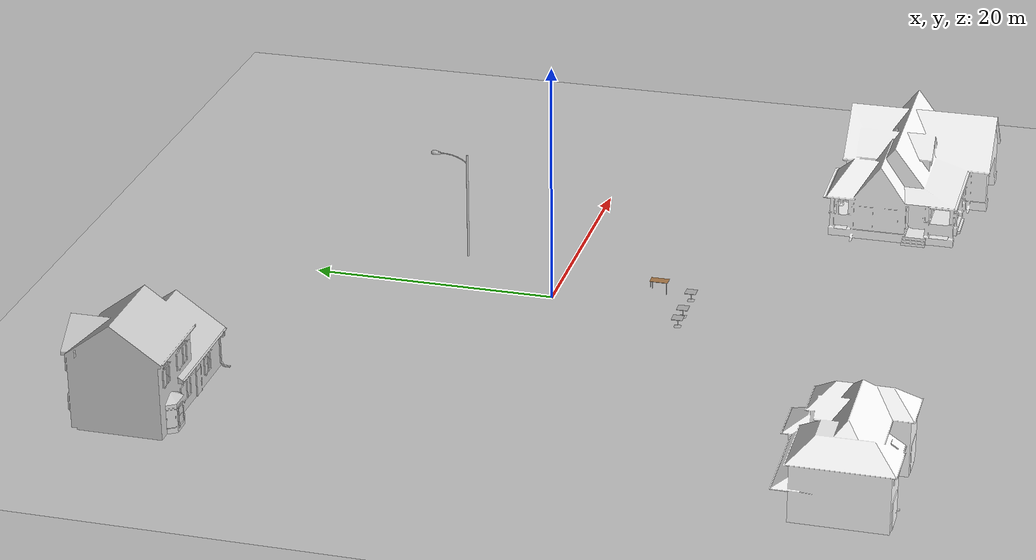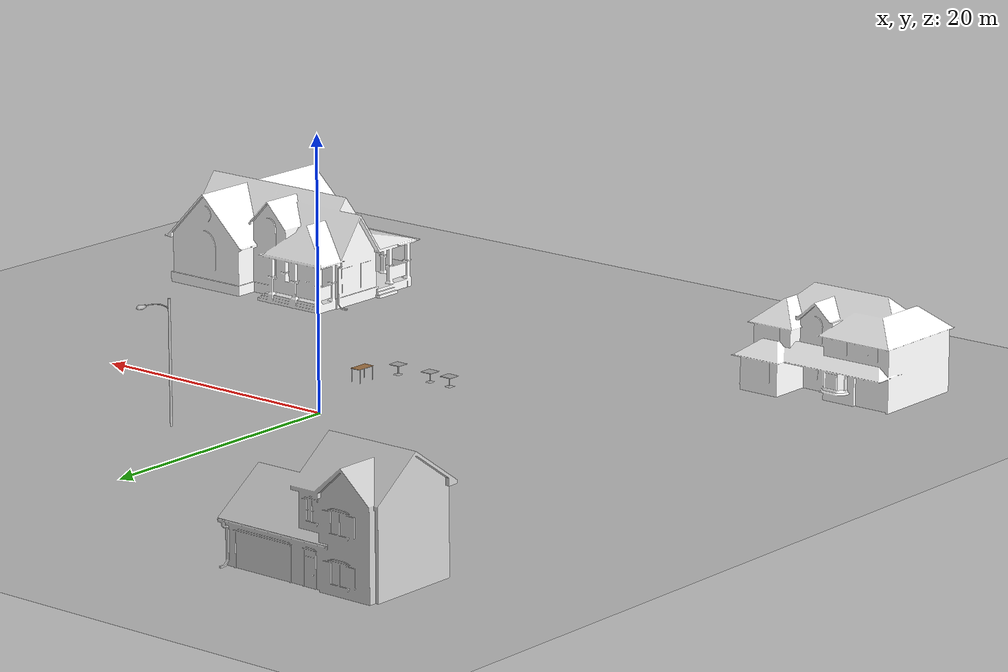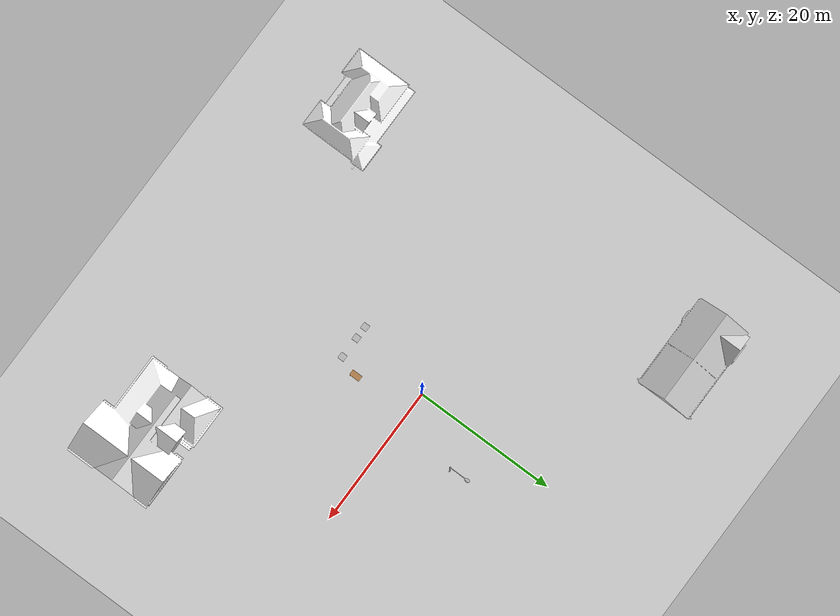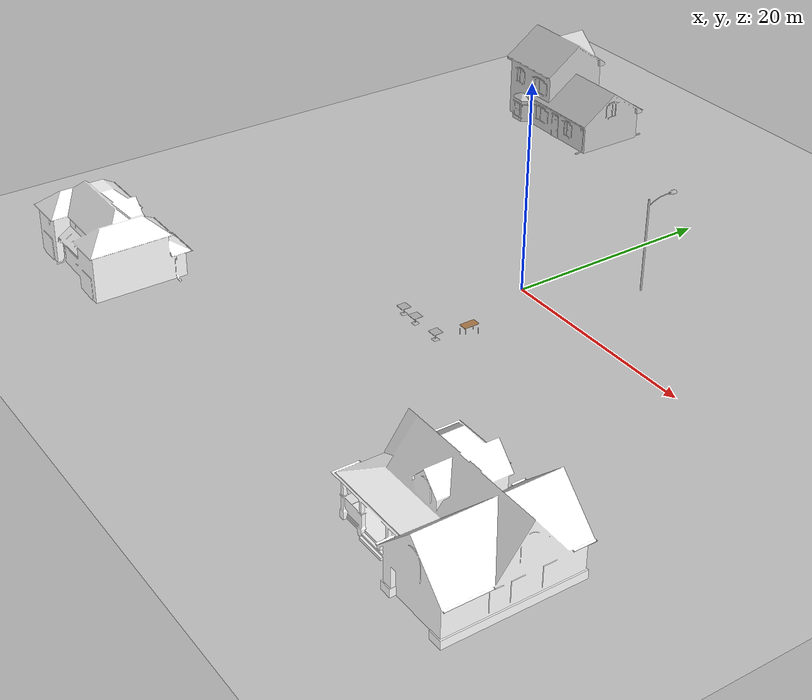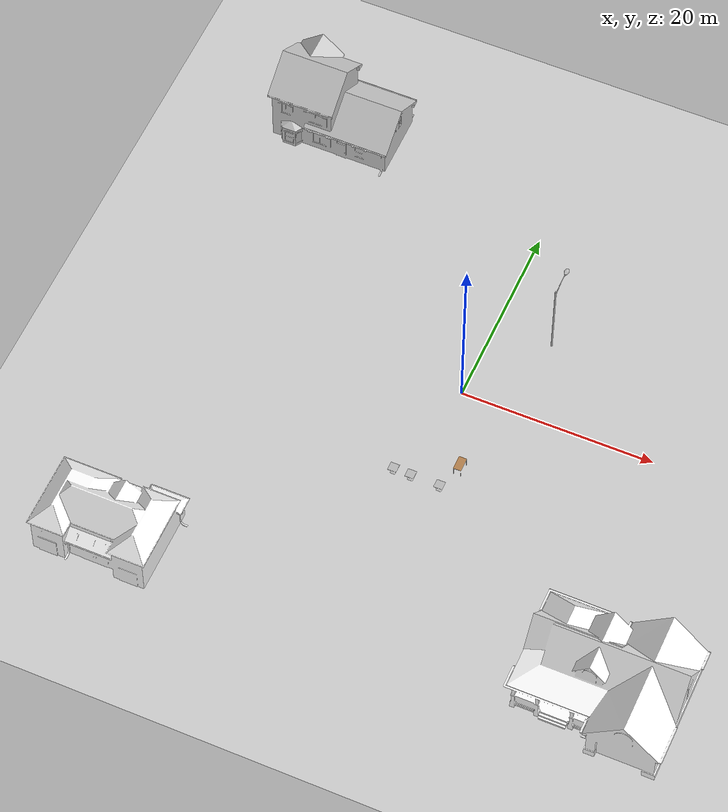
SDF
<sdf version="1.7">
 <world name="default">
  <light name="sun" type="directional">
   <pose>0 0 10 0 -0 0</pose>
   <diffuse>0.8 0.8 0.8 1</diffuse>
   <specular>0.2 0.2 0.2 1</specular>
   <attenuation>
    <range>1000</range>
    <constant>0.9</constant>
    <linear>0.01</linear>
    <quadratic>0.001</quadratic>
   </attenuation>
   <direction>-0.5 0.1 -0.9</direction>
   <spot><inner_angle>0</inner_angle><outer_angle>0</outer_angle><falloff>0</falloff></spot>
  </light>
  <model name="ground_plane">
   <static>1</static>
   <link name="link">
    <collision name="collision">
     <geometry><plane><normal>0 0 1</normal><size>100 100</size></plane></geometry>
     <surface>
      <contact><collide_bitmask>65535</collide_bitmask></contact>
      <friction><ode><mu>100</mu><mu2>50</mu2></ode></friction>
     </surface>
    </collision>
    <visual name="visual">
     <cast_shadows>0</cast_shadows>
     <geometry><plane><normal>0 0 1</normal><size>100 100</size></plane></geometry>
     <material>
      <script><uri>file://media/materials/scripts/gazebo.material</uri><name>Gazebo/Grey</name></script>
     </material>
    </visual>
   </link>
  </model>
  <gravity>0 0 -9.8</gravity>
  <magnetic_field>6e-06 2.3e-05 -4.2e-05</magnetic_field>
  <atmosphere type="adiabatic"/>
  <physics type="ode">
   <max_step_size>0.001</max_step_size>
   <real_time_factor>1</real_time_factor>
   <real_time_update_rate>1000</real_time_update_rate>
  </physics>
  <scene><ambient>0.4 0.4 0.4 1</ambient><background>0.7 0.7 0.7 1</background><shadows>1</shadows></scene>
  <spherical_coordinates>
   <surface_model>EARTH_WGS84</surface_model>
   <latitude_deg>0</latitude_deg>
   <longitude_deg>0</longitude_deg>
   <elevation>0</elevation>
   <heading_deg>0</heading_deg>
  </spherical_coordinates>
  <model name="cafe_table">
   <static>1</static>
   <link name="link">
    <collision name="surface">
     <pose>0 0 0.755 0 -0 0</pose>
     <geometry><box><size>0.913 0.913 0.04</size></box></geometry>
    </collision>
    <collision name="column">
     <pose>0 0 0.37 0 -0 0</pose>
     <geometry><box><size>0.042 0.042 0.74</size></box></geometry>
    </collision>
    <collision name="base">
     <pose>0 0 0.02 0 -0 0</pose>
     <geometry><box><size>0.56 0.56 0.04</size></box></geometry>
    </collision>
    <visual name="visual">
     <geometry><mesh><uri>model://cafe_table/meshes/cafe_table.dae</uri></mesh></geometry>
    </visual>
   </link>
   <pose>-2.51283 -11.0272 0 0 -0 0</pose>
  </model>
  <model name="cafe_table_clone">
   <static>1</static>
   <link name="link">
    <collision name="surface">
     <pose>0 0 0.755 0 -0 0</pose>
     <geometry><box><size>0.913 0.913 0.04</size></box></geometry>
    </collision>
    <collision name="column">
     <pose>0 0 0.37 0 -0 0</pose>
     <geometry><box><size>0.042 0.042 0.74</size></box></geometry>
    </collision>
    <collision name="base">
     <pose>0 0 0.02 0 -0 0</pose>
     <geometry><box><size>0.56 0.56 0.04</size></box></geometry>
    </collision>
    <visual name="visual">
     <geometry><mesh><uri>model://cafe_table/meshes/cafe_table.dae</uri></mesh></geometry>
    </visual>
   </link>
   <pose>-0.691633 -11.0503 0 0 -0 0</pose>
  </model>
  <model name="cafe_table_clone_1">
   <static>1</static>
   <link name="link">
    <collision name="surface">
     <pose>0 0 0.755 0 -0 0</pose>
     <geometry><box><size>0.913 0.913 0.04</size></box></geometry>
    </collision>
    <collision name="column">
     <pose>0 0 0.37 0 -0 0</pose>
     <geometry><box><size>0.042 0.042 0.74</size></box></geometry>
    </collision>
    <collision name="base">
     <pose>0 0 0.02 0 -0 0</pose>
     <geometry><box><size>0.56 0.56 0.04</size></box></geometry>
    </collision>
    <visual name="visual">
     <geometry><mesh><uri>model://cafe_table/meshes/cafe_table.dae</uri></mesh></geometry>
    </visual>
   </link>
   <pose>2.31713 -11.0591 0 0 -0 0</pose>
  </model>
  <model name="Lamp Post">
   <static>1</static>
   <link name="link">
    <collision name="collision">
     <geometry><mesh><uri>model://lamp_post/meshes/lamp_post.dae</uri><scale>3 3 3</scale></mesh></geometry>
    </collision>
    <visual name="visual">
     <geometry><mesh><uri>model://lamp_post/meshes/lamp_post.dae</uri><scale>3 3 3</scale></mesh></geometry>
    </visual>
   </link>
   <pose>5.89277 8.78088 0 0 -0 3.12254</pose>
  </model>
  <model name="table">
   <static>1</static>
   <link name="link">
    <collision name="surface">
     <pose>0 0 1 0 -0 0</pose>
     <geometry><box><size>1.5 0.8 0.03</size></box></geometry>
     <surface><friction><ode><mu>0.6</mu><mu2>0.6</mu2></ode></friction></surface>
    </collision>
    <visual name="visual1">
     <pose>0 0 1 0 -0 0</pose>
     <geometry><box><size>1.5 0.8 0.03</size></box></geometry>
     <material>
      <script><uri>file://media/materials/scripts/gazebo.material</uri><name>Gazebo/Wood</name></script>
     </material>
    </visual>
    <collision name="front_left_leg">
     <pose>0.68 0.38 0.5 0 -0 0</pose>
     <geometry><cylinder><radius>0.02</radius><length>1</length></cylinder></geometry>
    </collision>
    <visual name="front_left_leg">
     <pose>0.68 0.38 0.5 0 -0 0</pose>
     <geometry><cylinder><radius>0.02</radius><length>1</length></cylinder></geometry>
     <material>
      <script><uri>file://media/materials/scripts/gazebo.material</uri><name>Gazebo/Grey</name></script>
     </material>
    </visual>
    <collision name="front_right_leg">
     <pose>0.68 -0.38 0.5 0 -0 0</pose>
     <geometry><cylinder><radius>0.02</radius><length>1</length></cylinder></geometry>
    </collision>
    <visual name="front_right_leg">
     <pose>0.68 -0.38 0.5 0 -0 0</pose>
     <geometry><cylinder><radius>0.02</radius><length>1</length></cylinder></geometry>
     <material>
      <script><uri>file://media/materials/scripts/gazebo.material</uri><name>Gazebo/Grey</name></script>
     </material>
    </visual>
    <collision name="back_right_leg">
     <pose>-0.68 -0.38 0.5 0 -0 0</pose>
     <geometry><cylinder><radius>0.02</radius><length>1</length></cylinder></geometry>
    </collision>
    <visual name="back_right_leg">
     <pose>-0.68 -0.38 0.5 0 -0 0</pose>
     <geometry><cylinder><radius>0.02</radius><length>1</length></cylinder></geometry>
     <material>
      <script><uri>file://media/materials/scripts/gazebo.material</uri><name>Gazebo/Grey</name></script>
     </material>
    </visual>
    <collision name="back_left_leg">
     <pose>-0.68 0.38 0.5 0 -0 0</pose>
     <geometry><cylinder><radius>0.02</radius><length>1</length></cylinder></geometry>
    </collision>
    <visual name="back_left_leg">
     <pose>-0.68 0.38 0.5 0 -0 0</pose>
     <geometry><cylinder><radius>0.02</radius><length>1</length></cylinder></geometry>
     <material>
      <script><uri>file://media/materials/scripts/gazebo.material</uri><name>Gazebo/Grey</name></script>
     </material>
    </visual>
   </link>
   <pose>3.25254 -8.22033 0 0 -0 1.56999</pose>
  </model>
  <model name="House 1">
   <static>1</static>
   <link name="link">
    <collision name="collision">
     <geometry><mesh><uri>model://house_1/meshes/house_1.dae</uri><scale>1.5 1.5 1.5</scale></mesh></geometry>
    </collision>
    <visual name="visual">
     <geometry><mesh><uri>model://house_1/meshes/house_1.dae</uri><scale>1.5 1.5 1.5</scale></mesh></geometry>
     <material>
      <script>
       <uri>model://house_1/materials/scripts</uri>
       <uri>model://house_1/materials/textures</uri>
       <name>House_1/Diffuse</name>
      </script>
      <shader type="normal_map_tangent_space"><normal_map>House_1_Normal.png</normal_map></shader>
     </material>
    </visual>
   </link>
   <pose>25.1916 -25.2598 0 0 -0 0</pose>
  </model>
  <model name="House 2">
   <static>1</static>
   <link name="link">
    <collision name="collision">
     <geometry><mesh><uri>model://house_2/meshes/house_2.dae</uri><scale>1.5 1.5 1.5</scale></mesh></geometry>
    </collision>
    <visual name="visual">
     <geometry><mesh><uri>model://house_2/meshes/house_2.dae</uri><scale>1.5 1.5 1.5</scale></mesh></geometry>
     <material>
      <script>
       <uri>model://house_2/materials/scripts</uri>
       <uri>model://house_2/materials/textures</uri>
       <uri>model://house_1/materials/textures</uri>
       <name>House_2/Diffuse</name>
      </script>
      <shader type="normal_map_tangent_space">
       <normal_map>model://house_1/materials/textures/House_1_Normal.png</normal_map>
      </shader>
     </material>
    </visual>
   </link>
   <pose>-25.5526 -28.8013 0 0 -0 0</pose>
  </model>
  <model name="House 3">
   <static>1</static>
   <link name="link">
    <collision name="collision">
     <geometry><mesh><uri>model://house_3/meshes/house_3.dae</uri><scale>1.5 1.5 1.5</scale></mesh></geometry>
    </collision>
    <visual name="visual">
     <geometry><mesh><uri>model://house_3/meshes/house_3.dae</uri><scale>1.5 1.5 1.5</scale></mesh></geometry>
     <material>
      <script>
       <uri>model://house_3/materials/scripts</uri>
       <uri>model://house_3/materials/textures</uri>
       <uri>model://house_1/materials/textures</uri>
       <name>House_3/Diffuse</name>
      </script>
      <shader type="normal_map_tangent_space">
       <normal_map>model://house_1/materials/textures/House_1_Normal.png</normal_map>
      </shader>
     </material>
    </visual>
   </link>
   <pose>-23.625 25.403 0 0 -0 0</pose>
  </model>
 </world>
</sdf>
